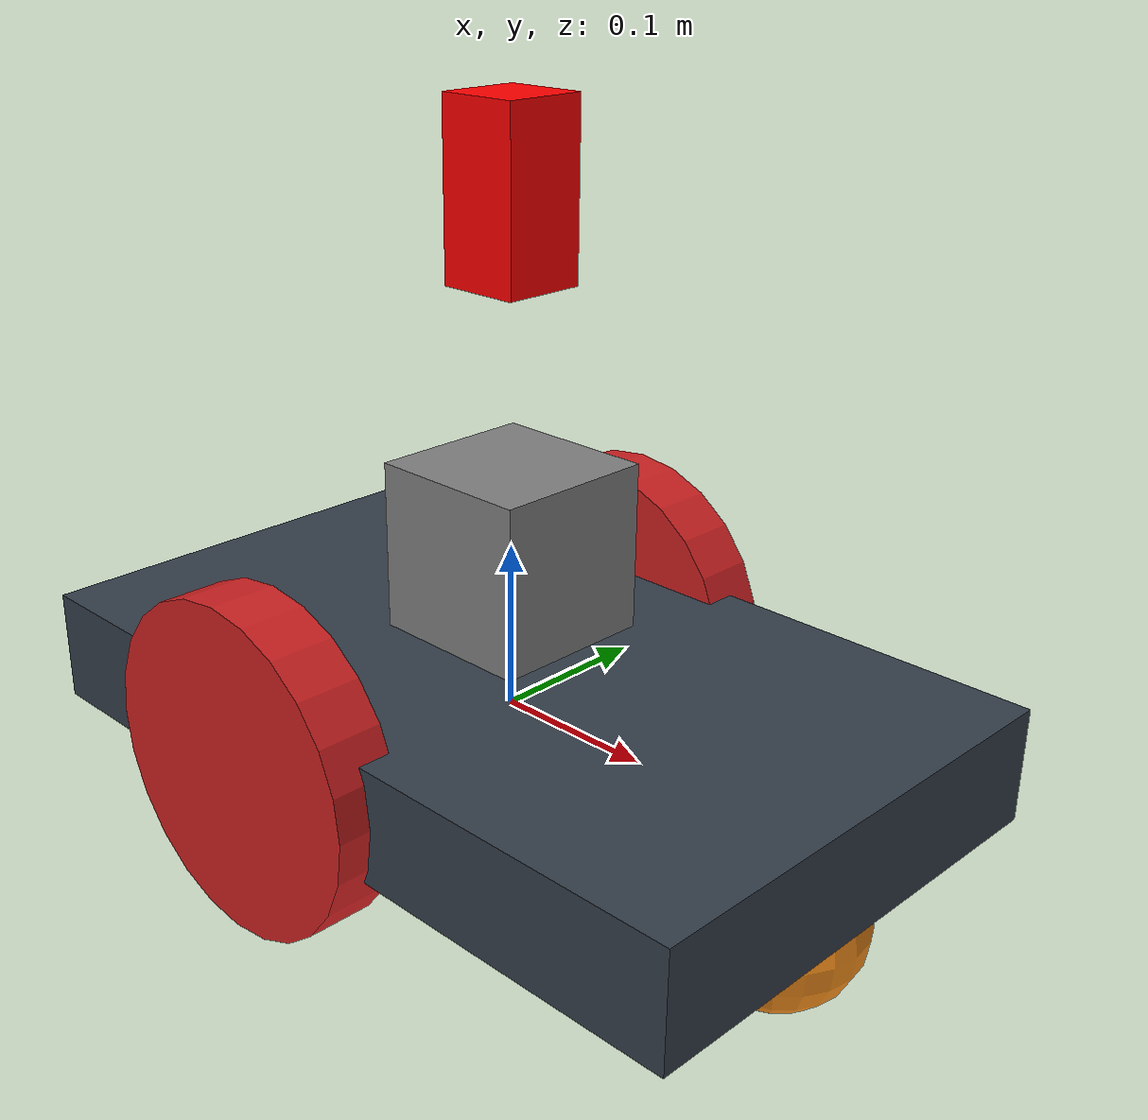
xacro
<?xml version="1.0"?>
<robot xmlns:xacro="http://www.ros.org/wiki/xacro" name="robot4_xacro">
<xacro:include filename="$(find robot_urdf)/urdf/robot4.gazebo"/>

	<xacro:property name="length_wheel" value="0.04" />
	<xacro:property name="radius_wheel" value="0.1" />

	<xacro:macro name="default_inertial" params="mass">
               <inertial>
                       <mass value="${mass}" />
                       <origin rpy="0 1.5707 1.5707" xyz="0 0 0"/>
                       <inertia ixx="0.000526666666667" ixy="0" ixz="0" iyy="0.000526666666667" iyz="0" izz="0.001"/>
               </inertial>
	</xacro:macro>

    <xacro:macro name="wheel_geometry">
		<geometry>
       			<cylinder length="${length_wheel}" radius="${radius_wheel}"/>
     	</geometry>
	</xacro:macro>

  <material name="black">
    <color rgba="0.0 0.0 0.0 1.0"/>
  </material>
  <material name="blue">
    <color rgba="0.203125 0.23828125 0.28515625 1.0"/>
  </material>
  <material name="green">
    <color rgba="0.0 0.8 0.0 1.0"/>
  </material>
  <material name="grey">
    <color rgba="0.2 0.2 0.2 1.0"/>
  </material>
  <material name="orange">
    <color rgba="1.0 0.423529411765 0.0392156862745 1.0"/>
  </material>
  <material name="brown">
    <color rgba="0.870588235294 0.811764705882 0.764705882353 1.0"/>
  </material>
  <material name="red">
    <color rgba="0.80078125 0.12890625 0.1328125 1.0"/>
  </material>
  <material name="white">
    <color rgba="1.0 1.0 1.0 1.0"/>
  </material>

	  <link name="link_chassis">
    <!-- pose and inertial -->
    <pose>0 0 0.1 0 0 0</pose>
    <inertial>
      <mass value="5"/>
      <origin rpy="0 0 0" xyz="0 0 0.1"/>
      <inertia ixx="0.0395416666667" ixy="0" ixz="0" iyy="0.106208333333" iyz="0" izz="0.106208333333"/>
    </inertial>
    <!-- body -->
    <collision name="collision_chassis">
      <geometry>
        <box size="0.5 0.3 0.07"/>
      </geometry>
    </collision>
    <visual>
      <origin rpy="0 0 0" xyz="0 0 0"/>
      <geometry>
        <box size="0.5 0.3 0.07"/>
      </geometry>
      <material name="blue"/>
    </visual>
    <!-- caster front -->
    <collision name="caster_front_collision">
      <origin rpy=" 0 0 0" xyz="0.35 0 -0.05"/>
      <geometry>
        <sphere radius="0.05"/>
      </geometry>
    </collision>
    <visual name="caster_front_visual">
      <origin rpy=" 0 0 0" xyz="0.2 0 -0.05"/>
      <geometry>
        <sphere radius="0.05"/>
      </geometry>
    </visual>
  </link>

   <link name="link_right_wheel">
    <xacro:default_inertial mass="0.2"/>
    <collision name="link_right_wheel_collision">
      <origin rpy="0 1.5707 1.5707" xyz="0 0 0"/>
      <xacro:wheel_geometry />
    </collision>
    <visual name="link_right_wheel_visual">
      <origin rpy="0 1.5707 1.5707" xyz="0 0 0"/>
      <xacro:wheel_geometry />
      <material name="red"/>
    </visual>
  </link>

   <link name="link_left_wheel">
    <xacro:default_inertial mass="0.2"/>
    <collision name="link_left_wheel_collision">
      <origin rpy="0 1.5707 1.5707" xyz="0 0 0"/>
      <xacro:wheel_geometry />
    </collision>
    <visual name="link_left_wheel_visual">
      <origin rpy="0 1.5707 1.5707" xyz="0 0 0"/>
      <xacro:wheel_geometry />
      <material name="red"/>
    </visual>
  </link>

  <joint name="joint_right_wheel" type="continuous">
    <origin rpy="0 0 0" xyz="-0.05 0.15 0"/>
    <child link="link_right_wheel"/>
    <parent link="link_chassis"/>
    <axis rpy="0 0 0" xyz="0 1 0"/>
    <limit effort="10000" velocity="1000"/>
    <joint_properties damping="1.0" friction="1.0"/>
  </joint>

  <joint name="joint_left_wheel" type="continuous">
    <origin rpy="0 0 0" xyz="-0.05 -0.15 0"/>
    <child link="link_left_wheel"/>
    <parent link="link_chassis"/>
    <axis rpy="0 0 0" xyz="0 1 0"/>
    <limit effort="10000" velocity="1000"/>
    <joint_properties damping="1.0" friction="1.0"/>
  </joint>

  <!-- New link for camera mount -->
  <link name="camera_mount">
    <inertial>
      <mass value="0.1"/>
      <origin xyz="0 0 0" rpy="0 0 0"/>
      <inertia ixx="0.0001" ixy="0.0" ixz="0.0" iyy="0.0001" iyz="0.0" izz="0.0001"/>
    </inertial>
    <visual>
      <origin xyz="0 0 0" rpy="0 0 0"/>
      <geometry>
        <box size="0.1 0.1 0.1"/>
      </geometry>
      <material name="camera_material">
        <color rgba="0.5 0.5 0.5 1.0"/>
      </material>
    </visual>
    <collision>
      <origin xyz="0 0 0" rpy="0 0 0"/>
      <geometry>
        <box size="0.1 0.1 0.1"/>
      </geometry>
    </collision>
  </link>

  <!-- Joint to connect camera mount to chassis -->
  <joint name="camera_mount_joint" type="fixed">
    <parent link="link_chassis"/>
    <child link="camera_mount"/>
    <origin xyz="0 0 0.1" rpy="0 0 0"/>
  </joint>

  <!-- Adjust the camera link to be a child of the camera mount -->
  <joint name="camera_joint" type="continuous">
    <command_interface name="velocity">
    </command_interface>
    <state_interface name="position"/>
    <state_interface name="velocity"/>
    <state_interface name="effort"/>
    <axis xyz="0 0 1" />
    <origin xyz="0 0 0.1" rpy="0 0 0"/>
    <parent link="camera_mount"/>
    <child link="camera_link"/>
  </joint>

  <link name="camera_link">
    <collision>
      <origin xyz="0 0 0.25" rpy="0 0 0"/>
      <geometry>
        <box size="0.05 0.05 0.05"/>
      </geometry>
    </collision>
    <visual>
      <origin xyz="0 0 0.1" rpy="0 0 0"/>
      <geometry>
        <box size="0.05 0.05 0.1"/>
      </geometry>
      <material name="red">
        <color rgba="1 0 0 1"/>
      </material>
    </visual>
    <inertial>
      <mass value="1e-5" />
      <origin xyz="0 0 0" rpy="0 0 0"/>
      <inertia ixx="1e-6" ixy="0" ixz="0" iyy="1e-6" iyz="0" izz="1e-6" />
    </inertial>
  </link>

  <transmission name="camera_trans">
    <type>transmission_interface/SimpleTransmission</type>
    <joint name="camera_joint">
      <hardwareInterface>hardware_interface/VelocityJointInterface</hardwareInterface>
    </joint>
    <actuator name="camera_motor">
      <mechanicalReduction>m1</mechanicalReduction>
    </actuator>
  </transmission>

  <!-- ros2_control tag -->
  <ros2_control name="my_robot_control" type="system">
    <hardware>
      <plugin>gazebo_ros2_control/GazeboSystem</plugin>
    </hardware>
    <joint name="camera_joint">
      <command_interface name="velocity">
        <param name="min">-10</param>
        <param name="max">10</param>
      </command_interface>
      <state_interface name="position"/>
      <state_interface name="velocity"/>
      <state_interface name="effort"/>
    </joint>
  </ros2_control>

</robot>
